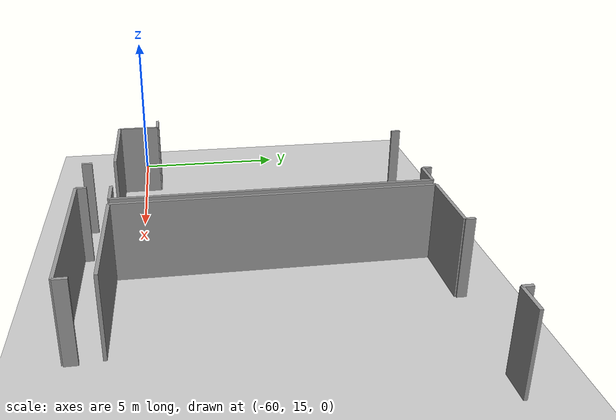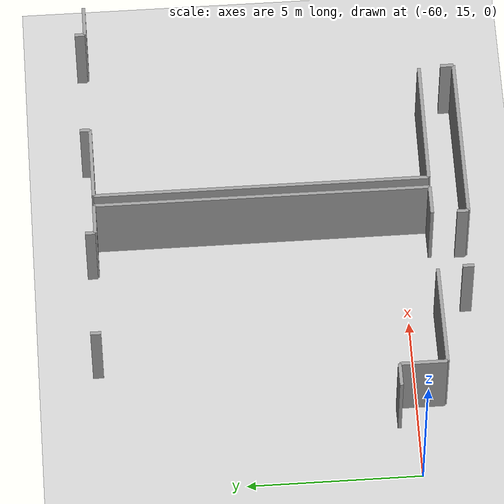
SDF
<sdf version="1.6">
 <world name="default">
  <model name="ground_plane">
   <static>1</static>
   <link name="link">
    <collision name="collision">
     <geometry><plane><normal>0 0 1</normal><size>100 100</size></plane></geometry>
     <surface><friction><ode><mu>100</mu><mu2>50</mu2></ode></friction></surface>
    </collision>
    <visual name="visual">
     <cast_shadows>0</cast_shadows>
     <geometry><plane><normal>0 0 1</normal><size>100 100</size></plane></geometry>
     <material>
      <script><uri>file://media/materials/scripts/gazebo.material</uri><name>Gazebo/Grey</name></script>
     </material>
    </visual>
   </link>
  </model>
  <model name="0510032196_A_40_1_104">
   <static>1</static>
   <link name="Wall_9">
    <collision name="Wall_9_Collision">
     <geometry><box><size>1.34830461085 0.1 2.5</size></box></geometry>
     <pose>0.674152305424 0 1.25 0 0 0</pose>
    </collision>
    <visual name="Wall_9_Visual">
     <pose>0.674152305424 0 1.25 0 0 0</pose>
     <geometry><box><size>1.34830461085 0.1 2.5</size></box></geometry>
     <material>
      <script><uri>file://media/materials/scripts/gazebo.material</uri><name>Gazebo/Grey</name></script>
      <ambient>1 1 1 1</ambient>
     </material>
    </visual>
    <pose>7.73308423568 -9.9736922373 0 0 0 1.57079632679</pose>
   </link>
   <link name="Wall_10">
    <collision name="Wall_10_Collision">
     <geometry><box><size>0.690102180875 0.1 2.5</size></box></geometry>
     <pose>0.345051090438 0 1.25 0 0 0</pose>
    </collision>
    <visual name="Wall_10_Visual">
     <pose>0.345051090438 0 1.25 0 0 0</pose>
     <geometry><box><size>0.690102180875 0.1 2.5</size></box></geometry>
     <material>
      <script><uri>file://media/materials/scripts/gazebo.material</uri><name>Gazebo/Grey</name></script>
      <ambient>1 1 1 1</ambient>
     </material>
    </visual>
    <pose>7.73308423568 -8.62538762646 0 0 0 3.14159265359</pose>
   </link>
   <link name="Wall_14">
    <collision name="Wall_14_Collision">
     <geometry><box><size>0.304763357226 0.1 2.5</size></box></geometry>
     <pose>0.152381678613 0 1.25 0 0 0</pose>
    </collision>
    <visual name="Wall_14_Visual">
     <pose>0.152381678613 0 1.25 0 0 0</pose>
     <geometry><box><size>0.304763357226 0.1 2.5</size></box></geometry>
     <material>
      <script><uri>file://media/materials/scripts/gazebo.material</uri><name>Gazebo/Grey</name></script>
      <ambient>1 1 1 1</ambient>
     </material>
    </visual>
    <pose>9.28613186925 -0.313405520817 0 0 0 1.57079632679</pose>
   </link>
   <link name="Wall_15">
    <collision name="Wall_15_Collision">
     <geometry><box><size>0.292181383763 0.1 2.5</size></box></geometry>
     <pose>0.146090691881 0 1.25 0 0 0</pose>
    </collision>
    <visual name="Wall_15_Visual">
     <pose>0.146090691881 0 1.25 0 0 0</pose>
     <geometry><box><size>0.292181383763 0.1 2.5</size></box></geometry>
     <material>
      <script><uri>file://media/materials/scripts/gazebo.material</uri><name>Gazebo/Grey</name></script>
      <ambient>1 1 1 1</ambient>
     </material>
    </visual>
    <pose>12.5949367089 -0.00864216359107 0 0 0 -1.57079632679</pose>
   </link>
   <link name="Wall_16">
    <collision name="Wall_16_Collision">
     <geometry><box><size>0.914162981038 0.1 2.5</size></box></geometry>
     <pose>0.457081490519 0 1.25 0 0 0</pose>
    </collision>
    <visual name="Wall_16_Visual">
     <pose>0.457081490519 0 1.25 0 0 0</pose>
     <geometry><box><size>0.914162981038 0.1 2.5</size></box></geometry>
     <material>
      <script><uri>file://media/materials/scripts/gazebo.material</uri><name>Gazebo/Grey</name></script>
      <ambient>1 1 1 1</ambient>
     </material>
    </visual>
    <pose>12.5949367089 -0.300823547354 0 0 0 0.0</pose>
   </link>
   <link name="Wall_17">
    <collision name="Wall_17_Collision">
     <geometry><box><size>9.65355091251 0.1 2.5</size></box></geometry>
     <pose>4.82677545626 0 1.25 0 0 0</pose>
    </collision>
    <visual name="Wall_17_Visual">
     <pose>4.82677545626 0 1.25 0 0 0</pose>
     <geometry><box><size>9.65355091251 0.1 2.5</size></box></geometry>
     <material>
      <script><uri>file://media/materials/scripts/gazebo.material</uri><name>Gazebo/Grey</name></script>
      <ambient>1 1 1 1</ambient>
     </material>
    </visual>
    <pose>13.5090996899 -0.300823547354 0 0 0 -1.57079632679</pose>
   </link>
   <link name="Wall_18">
    <collision name="Wall_18_Collision">
     <geometry><box><size>0.879975598597 0.1 2.5</size></box></geometry>
     <pose>0.439987799298 0 1.25 0 0 0</pose>
    </collision>
    <visual name="Wall_18_Visual">
     <pose>0.439987799298 0 1.25 0 0 0</pose>
     <geometry><box><size>0.879975598597 0.1 2.5</size></box></geometry>
     <material>
      <script><uri>file://media/materials/scripts/gazebo.material</uri><name>Gazebo/Grey</name></script>
      <ambient>1 1 1 1</ambient>
     </material>
    </visual>
    <pose>13.5090996899 -9.95437445986 0 0 0 3.14159265359</pose>
   </link>
   <link name="Wall_19">
    <collision name="Wall_19_Collision">
     <geometry><box><size>3.01643113249 0.1 2.5</size></box></geometry>
     <pose>1.50821556625 0 1.25 0 0 0</pose>
    </collision>
    <visual name="Wall_19_Visual">
     <pose>1.50821556625 0 1.25 0 0 0</pose>
     <geometry><box><size>3.01643113249 0.1 2.5</size></box></geometry>
     <material>
      <script><uri>file://media/materials/scripts/gazebo.material</uri><name>Gazebo/Grey</name></script>
      <ambient>1 1 1 1</ambient>
     </material>
    </visual>
    <pose>10.7494535102 -9.95437445986 0 0 0 -3.13518842666</pose>
   </link>
   <link name="Wall_20">
    <collision name="Wall_20_Collision">
     <geometry><box><size>9.64643383661 0.1 2.5</size></box></geometry>
     <pose>4.82321691831 0 1.25 0 0 0</pose>
    </collision>
    <visual name="Wall_20_Visual">
     <pose>4.82321691831 0 1.25 0 0 0</pose>
     <geometry><box><size>9.64643383661 0.1 2.5</size></box></geometry>
     <material>
      <script><uri>file://media/materials/scripts/gazebo.material</uri><name>Gazebo/Grey</name></script>
      <ambient>1 1 1 1</ambient>
     </material>
    </visual>
    <pose>13.8371206344 -9.95500991307 0 0 0 1.57079632679</pose>
   </link>
   <link name="Wall_21">
    <collision name="Wall_21_Collision">
     <geometry><box><size>2.24988561842 0.1 2.5</size></box></geometry>
     <pose>1.12494280921 0 1.25 0 0 0</pose>
    </collision>
    <visual name="Wall_21_Visual">
     <pose>1.12494280921 0 1.25 0 0 0</pose>
     <geometry><box><size>2.24988561842 0.1 2.5</size></box></geometry>
     <material>
      <script><uri>file://media/materials/scripts/gazebo.material</uri><name>Gazebo/Grey</name></script>
      <ambient>1 1 1 1</ambient>
     </material>
    </visual>
    <pose>13.8371206344 -0.308576076458 0 0 0 0.0</pose>
   </link>
   <link name="Wall_22">
    <collision name="Wall_22_Collision">
     <geometry><box><size>0.29790046261 0.1 2.5</size></box></geometry>
     <pose>0.148950231305 0 1.25 0 0 0</pose>
    </collision>
    <visual name="Wall_22_Visual">
     <pose>0.148950231305 0 1.25 0 0 0</pose>
     <geometry><box><size>0.29790046261 0.1 2.5</size></box></geometry>
     <material>
      <script><uri>file://media/materials/scripts/gazebo.material</uri><name>Gazebo/Grey</name></script>
      <ambient>1 1 1 1</ambient>
     </material>
    </visual>
    <pose>16.0870062529 -0.308576076458 0 0 0 1.57079632679</pose>
   </link>
   <link name="Wall_23">
    <collision name="Wall_23_Collision">
     <geometry><box><size>0.29790046261 0.1 2.5</size></box></geometry>
     <pose>0.148950231305 0 1.25 0 0 0</pose>
    </collision>
    <visual name="Wall_23_Visual">
     <pose>0.148950231305 0 1.25 0 0 0</pose>
     <geometry><box><size>0.29790046261 0.1 2.5</size></box></geometry>
     <material>
      <script><uri>file://media/materials/scripts/gazebo.material</uri><name>Gazebo/Grey</name></script>
      <ambient>1 1 1 1</ambient>
     </material>
    </visual>
    <pose>19.4144934167 -0.0106756138478 0 0 0 -1.57079632679</pose>
   </link>
   <link name="Wall_24">
    <collision name="Wall_24_Collision">
     <geometry><box><size>0.933353667836 0.1 2.5</size></box></geometry>
     <pose>0.466676833918 0 1.25 0 0 0</pose>
    </collision>
    <visual name="Wall_24_Visual">
     <pose>0.466676833918 0 1.25 0 0 0</pose>
     <geometry><box><size>0.933353667836 0.1 2.5</size></box></geometry>
     <material>
      <script><uri>file://media/materials/scripts/gazebo.material</uri><name>Gazebo/Grey</name></script>
      <ambient>1 1 1 1</ambient>
     </material>
    </visual>
    <pose>19.4144934167 -0.308576076458 0 0 0 0.0</pose>
   </link>
   <link name="Wall_27">
    <collision name="Wall_27_Collision">
     <geometry><box><size>3.74903269755 0.1 2.5</size></box></geometry>
     <pose>1.87451634877 0 1.25 0 0 0</pose>
    </collision>
    <visual name="Wall_27_Visual">
     <pose>1.87451634877 0 1.25 0 0 0</pose>
     <geometry><box><size>3.74903269755 0.1 2.5</size></box></geometry>
     <material>
      <script><uri>file://media/materials/scripts/gazebo.material</uri><name>Gazebo/Grey</name></script>
      <ambient>1 1 1 1</ambient>
     </material>
    </visual>
    <pose>17.586040364 -9.98411366987 0 0 0 3.13382957136</pose>
   </link>
   <link name="Wall_423">
    <collision name="Wall_423_Collision">
     <geometry><box><size>0.325352041076 0.1 2.5</size></box></geometry>
     <pose>0.162676020538 0 1.25 0 0 0</pose>
    </collision>
    <visual name="Wall_423_Visual">
     <pose>0.162676020538 0 1.25 0 0 0</pose>
     <geometry><box><size>0.325352041076 0.1 2.5</size></box></geometry>
     <material>
      <script><uri>file://media/materials/scripts/gazebo.material</uri><name>Gazebo/Grey</name></script>
      <ambient>1 1 1 1</ambient>
     </material>
    </visual>
    <pose>10.8052463017 -10.9975344416 0 0 0 1.57079632679</pose>
   </link>
   <link name="Wall_424">
    <collision name="Wall_424_Collision">
     <geometry><box><size>0.322047684409 0.1 2.5</size></box></geometry>
     <pose>0.161023842204 0 1.25 0 0 0</pose>
    </collision>
    <visual name="Wall_424_Visual">
     <pose>0.161023842204 0 1.25 0 0 0</pose>
     <geometry><box><size>0.322047684409 0.1 2.5</size></box></geometry>
     <material>
      <script><uri>file://media/materials/scripts/gazebo.material</uri><name>Gazebo/Grey</name></script>
      <ambient>1 1 1 1</ambient>
     </material>
    </visual>
    <pose>12.6381475268 -10.6721824005 0 0 0 -1.57079632679</pose>
   </link>
   <link name="Wall_425">
    <collision name="Wall_425_Collision">
     <geometry><box><size>4.99212038026 0.1 2.5</size></box></geometry>
     <pose>2.49606019013 0 1.25 0 0 0</pose>
    </collision>
    <visual name="Wall_425_Visual">
     <pose>2.49606019013 0 1.25 0 0 0</pose>
     <geometry><box><size>4.99212038026 0.1 2.5</size></box></geometry>
     <material>
      <script><uri>file://media/materials/scripts/gazebo.material</uri><name>Gazebo/Grey</name></script>
      <ambient>1 1 1 1</ambient>
     </material>
    </visual>
    <pose>12.6381475268 -10.9942300849 0 0 0 0.0</pose>
   </link>
   <link name="Wall_426">
    <collision name="Wall_426_Collision">
     <geometry><box><size>0.377967566468 0.1 2.5</size></box></geometry>
     <pose>0.188983783234 0 1.25 0 0 0</pose>
    </collision>
    <visual name="Wall_426_Visual">
     <pose>0.188983783234 0 1.25 0 0 0</pose>
     <geometry><box><size>0.377967566468 0.1 2.5</size></box></geometry>
     <material>
      <script><uri>file://media/materials/scripts/gazebo.material</uri><name>Gazebo/Grey</name></script>
      <ambient>1 1 1 1</ambient>
     </material>
    </visual>
    <pose>17.6302679071 -10.9942300849 0 0 0 1.57079632679</pose>
   </link>
   <pose>-65.45 24.1679019877 0 0 0 0</pose>
  </model>
 </world>
</sdf>
